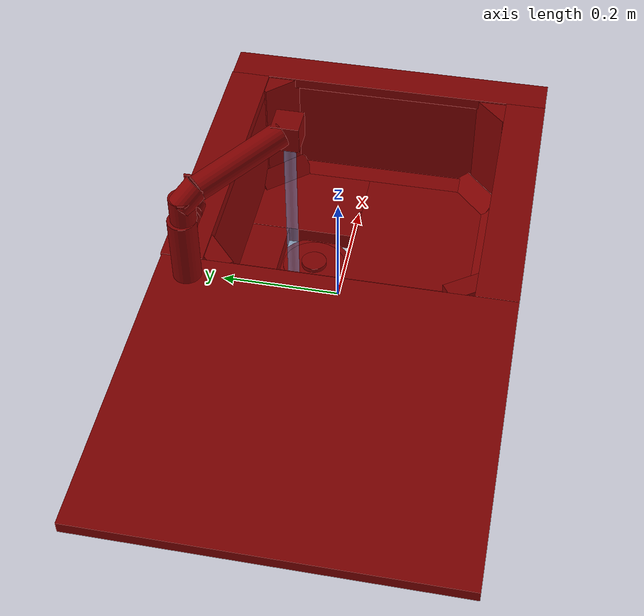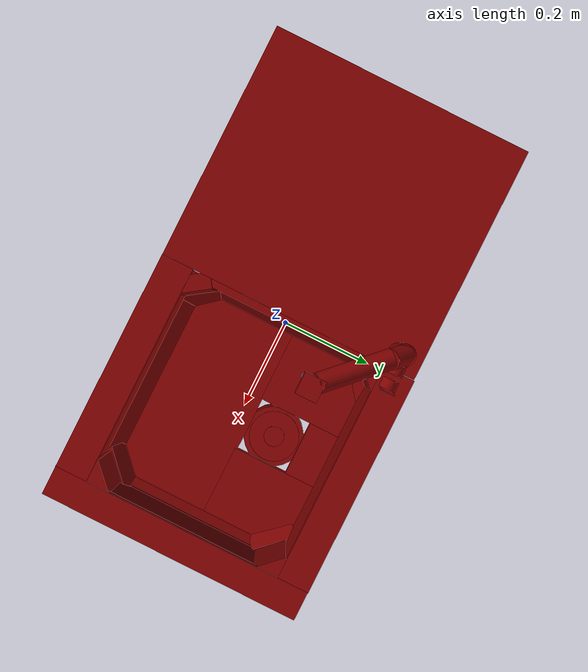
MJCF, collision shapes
<?xml version='1.0' encoding='UTF-8'?>
<mujoco model="model">
  <compiler angle="radian"/>
  <asset>
    <mesh file="visuals/handle.obj" name="handle_vis"/>
    <mesh file="visuals/Body001.obj" name="Body001_vis"/>
    <mesh file="visuals/Funnel001.obj" name="Funnel001_vis"/>
    <mesh file="visuals/spout.obj" name="spout_vis"/>
    <texture file="visuals/T_BC001.png" name="Body001_material" type="2d"/>
    <material name="Body001_material" rgba="1 1 1 1.0" texture="Body001_material" shininess="0.35739320516586304" specular="1"/>
    <texture file="visuals/T_BC001.png" name="handle_material" type="2d"/>
    <material name="handle_material" rgba="1 1 1 1.0" texture="handle_material" shininess="0.35739320516586304" specular="2"/>
    <texture file="visuals/T_BC001.png" name="Funnel001_material" type="2d"/>
    <material name="Funnel001_material" rgba="1 1 1 1.0" texture="Funnel001_material" shininess="0.35739320516586304" specular="0.5"/>
    <texture file="visuals/T_BC001.png" name="spout_material" type="2d"/>
    <material name="spout_material" rgba="1 1 1 1.0" texture="spout_material" shininess="0.35739320516586304" specular="1"/>
  </asset>
  <default>
    <default class="visual">
      <geom conaffinity="0" contype="0" group="1" type="mesh"/>
    </default>
    <default class="collision">
      <geom group="0" rgba="0.5 0 0 0.5"/>
    </default>
    <default class="spawn">
      <geom group="0" rgba="1 1 1 0.5" contype="0" conaffinity="0"/>
      <site group="0" rgba="1 1 1 0.5"/>
    </default>
    <default class="region">
      <geom group="1" conaffinity="0" contype="0" rgba="0 1 0 0"/>
    </default>
  </default>
  <worldbody>
    <body>
      <body name="object">
        <geom mesh="Body001_vis" type="mesh" solimp="0.998 0.998 0.001" solref="0.001 1" density="100" friction="0.95 0.3 0.1" class="visual" material="Body001_material"/>
        <geom class="collision" type="box" pos="-0.2875385880470276 -0.0008984418818727136 0.04312605410814285" size="0.2741047739982605 0.30202779173851013 0.010235737077891827" quat="1.0 0.0 0.0 0.0"/>
        <geom class="collision" type="box" pos="0.5294533371925354 -0.0002560312859714031 0.043210044503211975" size="0.03295044228434563 0.3027687966823578 0.010228186845779419" quat="1.0 0.0 0.0 0.0"/>
        <geom class="collision" type="box" pos="0.5109840631484985 -0.0005308240652084351 -0.07721409946680069" size="0.008321618661284447 0.21207192540168762 0.11421234905719757" quat="1.0 0.0 0.0 0.0"/>
        <geom class="collision" type="box" pos="-0.010453362949192524 0.026724064722657204 -0.07721409946680069" size="0.013463507406413555 0.21207192540168762 0.11421234905719757" quat="1.0 0.0 0.0 0.0"/>
        <geom class="collision" type="box" pos="0.2424127608537674 0.266914963722229 0.043239373713731766" size="0.2546788454055786 0.036648474633693695 0.010198858566582203" quat="1.0 0.0 0.0 0.0"/>
        <geom class="collision" type="box" pos="0.24078743159770966 0.2454732209444046 -0.07589737325906754" size="0.2530535161495209 0.01516951248049736 0.1090444028377533" quat="1.0 0.0 0.0 0.0"/>
        <geom class="collision" type="box" pos="0.24078743159770966 -0.24943241477012634 -0.07589737325906754" size="0.2530535161495209 0.012662705965340137 0.1090444028377533" quat="1.0 0.0 0.0 0.0"/>
        <geom class="collision" type="box" pos="0.24213886260986328 -0.2666027545928955 0.04346432164311409" size="0.2552923560142517 0.036648474633693695 0.00997390877455473" quat="1.0 0.0 0.0 0.0"/>
        <geom class="collision" type="box" pos="0.25460320711135864 -0.10328363627195358 -0.1879698932170868" size="0.2530522048473358 0.1347573697566986 0.01709885708987713" quat="1.0 0.0 0.0 0.0"/>
        <geom class="collision" type="box" pos="0.40957146883010864 0.13129770755767822 -0.1879698932170868" size="0.09405696392059326 0.10557010024785995 0.01709897629916668" quat="1.0 0.0 0.0 0.0"/>
        <geom class="collision" type="box" pos="0.08970554918050766 0.13406549394130707 -0.1879698932170868" size="0.09498114138841629 0.10601960122585297 0.01709897629916668" quat="1.0 0.0 0.0 0.0"/>
        <geom class="collision" type="cylinder" pos="0.25292259454727173 0.09532701969146729 -0.2458876073360443" size="0.0708804577589035 0.04776541143655777" quat="1.0 0.0 0.0 0.0"/>
        <geom class="collision" type="cylinder" pos="-0.04991922900080681 0.2460225522518158 0.11299807578325272" size="0.024180535227060318 0.062119390815496445" quat="1.0 0.0 0.0 0.0"/>
        <geom class="collision" type="cylinder" pos="-0.020786724984645844 0.2478511780500412 0.14000830054283142" size="0.017893292009830475 0.016760164871811867" quat="0.7071068286895752 -0.0 0.7071067690849304 0.0"/>
        <geom class="collision" type="box" pos="0.49000313878059387 0.21210633218288422 -0.06518340855836868" size="0.018300360068678856 0.038068220019340515 0.11528453230857849" quat="0.9275355339050293 0.0 0.0 0.3737350404262543"/>
        <geom class="collision" type="box" pos="0.4851560592651367 -0.21456527709960938 -0.06518340855836868" size="0.018300360068678856 0.038068220019340515 0.11528453230857849" quat="0.38563087582588196 0.0 0.0 0.9226531386375427"/>
        <geom class="collision" type="box" pos="0.012153531424701214 -0.21607686579227448 -0.06518340855836868" size="0.018300360068678856 0.038068220019340515 0.11528453230857849" quat="0.297259122133255 0.0 -0.0 -0.9547968506813049"/>
        <geom class="collision" type="box" pos="0.009991075843572617 0.21785898506641388 -0.06518340855836868" size="0.018300360068678856 0.038068220019340515 0.11528453230857849" quat="0.9127280712127686 0.0 -0.0 -0.4085676074028015"/>
        <geom class="collision" type="box" pos="0.26680490374565125 0.2084677517414093 -0.18818596005439758" size="0.08813570439815521 0.05046704411506653 0.016630278900265694" quat="1.0 0.0 0.0 0.0"/>
        <geom class="collision" type="box" pos="0.25460320711135864 -0.2300654649734497 -0.1735922396183014" size="0.1979919672012329 0.017220091074705124 0.025875912979245186" quat="0.910473644733429 0.41356709599494934 0.0 0.0"/>
        <geom class="collision" type="box" pos="-0.005342260003089905 0.011147435754537582 -0.1651889979839325" size="0.1979919672012329 0.017220091074705124 0.025875912979245186" quat="0.20827990770339966 0.6757362484931946 0.6757362484931946 0.20827993750572205"/>
        <geom class="collision" type="box" pos="0.5005956292152405 0.00826413743197918 -0.17514941096305847" size="0.1979919672012329 0.017220089212059975 0.015161111950874329" quat="0.649133563041687 0.2804023027420044 0.2804023325443268 0.6491338014602661"/>
        <geom class="collision" type="box" pos="0.4669238030910492 0.2008136808872223 -0.173349067568779" size="0.018300356343388557 0.05297768861055374 0.025608424097299576" quat="0.8635186553001404 -0.15017089247703552 0.349958211183548 0.3306259214878082"/>
        <geom class="collision" type="box" pos="0.474323034286499 -0.194034144282341 -0.16729992628097534" size="0.018300356343388557 0.05297768861055374 0.025608424097299576" quat="0.8686248064041138 0.12839116156101227 0.29757699370384216 -0.37477272748947144"/>
        <geom class="collision" type="box" pos="0.02550439164042473 -0.20640939474105835 -0.16729992628097534" size="0.018300356343388557 0.05297768861055374 0.025608424097299576" quat="0.3267918527126312 0.304142564535141 0.11195364594459534 -0.8877898454666138"/>
        <geom class="collision" type="box" pos="0.03694582358002663 0.2198324203491211 -0.16729992628097534" size="0.018300356343388557 0.05297768861055374 0.025608424097299576" quat="0.41897687315940857 -0.29057544469833374 0.14353474974632263 0.8481875061988831"/>
        <body name="handle">
          <joint axis="1.0 0.0 0.0" pos="0.01812938041985035 0.2480713427066803 0.139712855219841" limited="true" name="handle_temp_joint" type="hinge" range="-0.7853981633974483 0.7853981633974483" damping="1" frictionloss="1" armature=".01" stiffness="0.05"/>
          <joint axis="0.0 1.0 0.0" pos="0.01812938041985035 0.2480713427066803 0.139712855219841" limited="true" name="handle_joint" type="hinge" range="0.0 0.2617993877991494" damping="1" frictionloss="1" armature=".01" stiffness="0.05"/>
          <geom mesh="handle_vis" type="mesh" solimp="0.998 0.998 0.001" solref="0.001 1" density="100" friction="0.95 0.3 0.1" class="visual" material="handle_material"/>
          <geom class="collision" type="cylinder" pos="0.01809685304760933 0.2478511780500412 0.1395990252494812" size="0.01828182302415371 0.011153779923915863" quat="0.7071068286895752 -0.0 0.7071067690849304 0.0"/>
          <geom class="collision" type="box" pos="0.032119326293468475 0.24869947135448456 0.16306659579277039" size="0.0016845897771418095 0.013875380158424377 0.036055874079465866" quat="1.0 0.0 0.0 0.0"/>
        </body>
        <body name="Funnel001">
          <joint axis="0.0 0.0 1.0" pos="0.2522986829280853 0.09536375105381012 -0.1954815685749054" limited="true" name="Funnel001_joint" range="0.0 0.4" type="slide" damping="0" frictionloss="0" armature="0" stiffness="0"/>
          <geom mesh="Funnel001_vis" type="mesh" solimp="0.998 0.998 0.001" solref="0.001 1" density="100" friction="0.95 0.3 0.1" class="visual" material="Funnel001_material"/>
          <geom class="collision" type="cylinder" pos="0.25230440497398376 0.09596304595470428 -0.19668932259082794" size="0.05950119346380234 0.0009597260504961014" quat="1.0 0.0 0.0 0.0"/>
          <geom class="collision" type="cylinder" pos="0.2521103620529175 0.0955749899148941 -0.19136670231819153" size="0.024024147540330887 0.004455683287233114" quat="1.0 0.0 0.0 0.0"/>
        </body>
        <body name="spout">
          <joint axis="0.0 0.0 1.0" pos="-0.05127536505460739 0.2445916086435318 0.23410385847091675" limited="true" name="spout_joint" range="-0.7853981633974483 0.7853981633974483" type="hinge" damping="1" frictionloss="1" armature=".01" stiffness="0.05"/>
          <site type="cylinder" rgba="0.5 0.75 1 0.5" size="0.010150724090635777 0.22796685993671417" pos="0.0916941836476326 0.0978408008813858 0.036135561764240265" name="water"/>
          <geom mesh="spout_vis" type="mesh" solimp="0.998 0.998 0.001" solref="0.001 1" density="100" friction="0.95 0.3 0.1" class="visual" material="spout_material"/>
          <geom class="collision" type="cylinder" pos="0.02296653762459755 0.1644744873046875 0.2511208951473236" size="0.02158275619149208 0.080698661506176" quat="0.7809773683547974 0.4956744909286499 0.36428695917129517 0.10805641114711761"/>
          <geom class="collision" type="box" pos="0.09023865312337875 0.09976723790168762 0.26791703701019287" size="0.022998733446002007 0.022998733446002007 0.022998733446002007" quat="1.0 0.0 0.0 0.0"/>
          <geom class="collision" type="cylinder" pos="-0.04888329282402992 0.24282993376255035 0.2002493292093277" size="0.021778030321002007 0.023167377337813377" quat="1.0 0.0 0.0 0.0"/>
          <geom class="collision" type="cylinder" pos="-0.04139203950762749 0.23307953774929047 0.2222091108560562" size="0.021778030321002007 0.023167377337813377" quat="0.904144823551178 0.32398682832717896 0.2762206494808197 0.03545193746685982"/>
        </body>
        <geom class="region" name="reg_main" type="box" pos="0.0 0.0 -0.1202595978975296" size="0.5608115196228027 0.30101001262664795 0.17152397334575653"/>
        <geom class="region" name="reg_basin" type="box" pos="0.2481497935950756 0.00010688602924346924 -0.060529688373208046" size="0.26250137761235237 0.25210191309452057 0.11053316853940487"/>
      </body>
    </body>
  </worldbody>
  <actuator>
    <motor name="handle_temp_joint_actuator" joint="handle_temp_joint" gear="10"/>
    <motor name="handle_joint_actuator" joint="handle_joint" gear="10"/>
    <motor name="Funnel001_joint_actuator" joint="Funnel001_joint" gear="10"/>
    <motor name="spout_joint_actuator" joint="spout_joint" gear="10"/>
  </actuator>
</mujoco>
